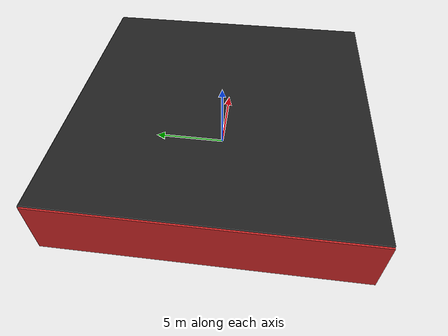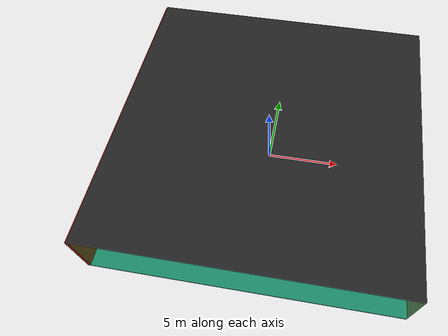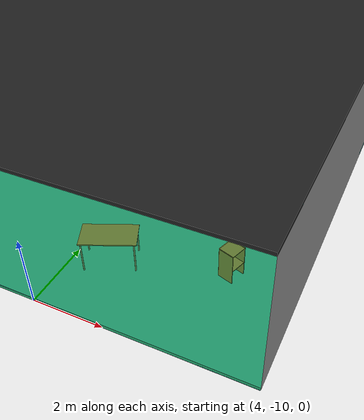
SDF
<sdf version="1.4">
 <world name="default">
  <physics type="ode">
   <max_step_size>0.001</max_step_size>
   <real_time_factor>1</real_time_factor>
   <real_time_update_rate>1000</real_time_update_rate>
   <gravity>0 0 -9.8</gravity>
  </physics>
  <scene><ambient>0.4 0.4 0.4 1</ambient><background>0.7 0.7 0.7 1</background><shadows>1</shadows></scene>
  <model name="Surrounding">
   <static>1</static>
   <link name="Ceiling">
    <collision name="Ceiling_Collision"><geometry><box><size>20 20 0.1</size></box></geometry></collision>
    <visual name="Ceiling_Visual">
     <geometry><box><size>20 20 0.1</size></box></geometry>
     <material>
      <script><uri>file://media/materials/scripts/gazebo.material</uri><name>Gazebo/Black</name></script>
     </material>
    </visual>
    <pose>0 0 4.05 0 0 0</pose>
   </link>
   <link name="Wall_South">
    <collision name="Wall_South_Collision">
     <geometry><box><size>20 0 4</size></box></geometry>
     <pose>0 0 2 0 -0 0</pose>
    </collision>
    <visual name="Wall_South_Visual">
     <pose>0 0 2 0 -0 0</pose>
     <geometry><box><size>20 0 4</size></box></geometry>
     <material>
      <script><uri>file://media/materials/scripts/gazebo.material</uri><name>Gazebo/GreenTransparent</name></script>
     </material>
    </visual>
    <velocity_decay><linear>0</linear><angular>0</angular></velocity_decay>
    <pose>0 -10 0 0 -0 0</pose>
   </link>
   <link name="Wall_East">
    <collision name="Wall_21_Collision">
     <geometry><box><size>20 0 4</size></box></geometry>
     <pose>0 0 2 0 -0 0</pose>
    </collision>
    <visual name="Wall_21_Visual">
     <pose>0 0 2 0 -0 0</pose>
     <geometry><box><size>20 0 4</size></box></geometry>
     <material>
      <script><uri>file://media/materials/scripts/gazebo.material</uri><name>Gazebo/Pioneer2Body</name></script>
     </material>
    </visual>
    <velocity_decay><linear>0</linear><angular>0</angular></velocity_decay>
    <pose>10 0 0 0 -0 1.5708</pose>
   </link>
   <link name="Wall_North">
    <collision name="Wall_22_Collision">
     <geometry><box><size>20 0.2 4</size></box></geometry>
     <pose>0 0 2 0 -0 0</pose>
    </collision>
    <visual name="Wall_22_Visual">
     <pose>0 0 2 0 -0 0</pose>
     <geometry><box><size>20 0.2 4</size></box></geometry>
     <material>
      <script><uri>file://media/materials/scripts/gazebo.material</uri><name>Gazebo/DarkGrey</name></script>
     </material>
    </visual>
    <velocity_decay><linear>0</linear><angular>0</angular></velocity_decay>
    <pose>0 10 0 0 -0 0</pose>
   </link>
   <link name="Wall_West">
    <collision name="Wall_23_Collision">
     <geometry><box><size>20 0.2 4</size></box></geometry>
     <pose>0 0 2 0 -0 0</pose>
    </collision>
    <visual name="Wall_23_Visual">
     <pose>0 0 2 0 -0 0</pose>
     <geometry><box><size>20 0.2 4</size></box></geometry>
     <material>
      <script><uri>file://media/materials/scripts/gazebo.material</uri><name>Gazebo/Red</name></script>
     </material>
    </visual>
    <velocity_decay><linear>0</linear><angular>0</angular></velocity_decay>
    <pose>-10 0 0 0 0 -1.5708</pose>
   </link>
   <link name="Ground_link">
    <collision name="collision">
     <pose>0 0 .05 0 -0 0</pose>
     <geometry><box><size>20 20 0.1</size></box></geometry>
    </collision>
    <visual name="visual">
     <pose>0 0 .05 0 -0 0</pose>
     <geometry><box><size>20 20 0.1</size></box></geometry>
     <material>
      <script><uri>file://media/materials/scripts/gazebo.material</uri><name>Gazebo/TurquoiseGlow</name></script>
     </material>
    </visual>
   </link>
   <static>1</static>
  </model>
  <spherical_coordinates>
   <surface_model>EARTH_WGS84</surface_model>
   <latitude_deg>0</latitude_deg>
   <longitude_deg>0</longitude_deg>
   <elevation>0</elevation>
   <heading_deg>0</heading_deg>
  </spherical_coordinates>
  <light name="lightball_0" type="diffuse">
   <diffuse>0.8 0.8 0.8 1</diffuse>
   <specular>0.2 0.2 0.2 1</specular>
   <attenuation>
    <range>100</range>
    <constant>0.7</constant>
    <linear>0.01</linear>
    <quadratic>0.001</quadratic>
   </attenuation>
   <direction>-0.5 0.1 -0.9</direction>
   <pose>3.52329518555 8.39985319645 3.67452427639 0 0 0</pose>
  </light>
  <light name="lightball_1" type="diffuse">
   <diffuse>0.8 0.8 0.8 1</diffuse>
   <specular>0.2 0.2 0.2 1</specular>
   <attenuation>
    <range>100</range>
    <constant>0.7</constant>
    <linear>0.01</linear>
    <quadratic>0.001</quadratic>
   </attenuation>
   <direction>-0.5 0.1 -0.9</direction>
   <pose>2.77646287337 9.65676588211 3.17261089836 0 0 0</pose>
  </light>
  <light name="lightball_2" type="diffuse">
   <diffuse>0.8 0.8 0.8 1</diffuse>
   <specular>0.2 0.2 0.2 1</specular>
   <attenuation>
    <range>100</range>
    <constant>0.7</constant>
    <linear>0.01</linear>
    <quadratic>0.001</quadratic>
   </attenuation>
   <direction>-0.5 0.1 -0.9</direction>
   <pose>9.41951473018 -6.86461038464 0.555665166894 0 0 0</pose>
  </light>
  <include>
   <uri>model://construction_cone</uri>
   <pose>-7.12045258403 -1.80438282046 0 0 0 1.10521451583</pose>
  </include>
  <include><uri>model://cabinet</uri><pose>-7.23995617348 6.95029599911 0 0 0 0.620807322917</pose></include>
  <include><uri>model://cabinet</uri><pose>0.703711317376 1.03540634113 0 0 0 0.707961284606</pose></include>
  <include><uri>model://table</uri><pose>5.0812761669 -8.02951348316 0 0 0 0.415448097801</pose></include>
  <include><uri>model://cabinet</uri><pose>4.97493743464 7.56961834849 0 0 0 0.510719416073</pose></include>
  <include><uri>model://cabinet</uri><pose>8.16417714079 -7.18693201424 0 0 0 2.82516886572</pose></include>
 </world>
</sdf>

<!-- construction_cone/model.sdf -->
<sdf version="1.5">
  <model name="Construction Cone">
    <link name="link">
      <collision name="collision">
        <geometry>
          <mesh>
            <scale>10 10 10</scale>
            <uri>file://isr-testbed/construction_cone/meshes/construction_cone.dae</uri>
          </mesh>
        </geometry>
      </collision>
      <visual name="visual">
        <geometry>
          <mesh>
            <scale>10 10 10</scale>
            <uri>file://isr-testbed/construction_cone/meshes/construction_cone.dae</uri>
          </mesh>
        </geometry>
      </visual>
    </link>
  </model>
</sdf>

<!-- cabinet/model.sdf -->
<sdf version="1.5">
  <model name="cabinet">
    <static>true</static>
    <link name="cabinet_bottom_plate">
      <inertial>
        <pose>0 0 -1 0 0 0</pose>
        <inertia>
          <ixx>2.050000</ixx>
          <ixy>0</ixy>
          <ixz>0</ixz>
          <iyy>2.050000</iyy>
          <iyz>0</iyz>
          <izz>2.050000</izz>
        </inertia>
        <mass>25.000000</mass>
      </inertial>
      <collision name="cabinet_bottom_plate_geom">
        <pose>0 0 0.010000 0 0 0</pose>
        <geometry>
          <box>
            <size>0.450000 0.450000 0.020000</size>
          </box>
        </geometry>
      </collision>
      <visual name="cabinet_bottom_plate_geom_visual">
        <pose>0 0 0.010000 0 0 0</pose>
        <geometry>
          <box>
            <size>0.450000 0.450000 0.020000</size>
          </box>
        </geometry>
        <material>
          <script>
            <uri>model://media/materials/scripts/gazebo.material</uri>
            <name>Gazebo/Wood</name>
          </script>
        </material>
      </visual>
      <collision name="cabinet_bottom_plate_geom_cabinet_back_plate">
        <pose>0.235000 0 0.510000 0 0 0</pose>
        <geometry>
          <box>
            <size>0.020000 0.450000 1.020000</size>
          </box>
        </geometry>
      </collision>
      <visual name="cabinet_bottom_plate_geom_cabinet_back_plate_visual">
        <pose>0.235000 0 0.510000 0 0 0</pose>
        <geometry>
          <box>
            <size>0.020000 0.450000 1.020000</size>
          </box>
        </geometry>
        <material>
          <script>
            <uri>model://media/materials/scripts/gazebo.material</uri>
            <name>Gazebo/Wood</name>
          </script>
        </material>
      </visual>
      <collision name="cabinet_bottom_plate_geom_cabinet_left_plate">
        <pose>0 0.235000 0.510000 0 0 0</pose>
        <geometry>
          <box>
            <size>0.450000 0.020000 1.020000</size>
          </box>
        </geometry>
      </collision>
      <visual name="cabinet_bottom_plate_geom_cabinet_left_plate_visual">
        <pose>0 0.235000 0.510000 0 0 0</pose>
        <geometry>
          <box>
            <size>0.450000 0.020000 1.020000</size>
          </box>
        </geometry>
        <material>
          <script>
            <uri>model://media/materials/scripts/gazebo.material</uri>
            <name>Gazebo/Wood</name>
          </script>
        </material>
      </visual>
      <collision name="cabinet_bottom_plate_geom_cabinet_middle_plate">
        <pose>0 0 0.510000 0 0 0</pose>
        <geometry>
          <box>
            <size>0.450000 0.450000 0.020000</size>
          </box>
        </geometry>
      </collision>
      <visual name="cabinet_bottom_plate_geom_cabinet_middle_plate_visual">
        <pose>0 0 0.510000 0 0 0</pose>
        <geometry>
          <box>
            <size>0.450000 0.450000 0.020000</size>
          </box>
        </geometry>
        <material>
          <script>
            <uri>model://media/materials/scripts/gazebo.material</uri>
            <name>Gazebo/Wood</name>
          </script>
        </material>
      </visual>
      <collision name="cabinet_bottom_plate_geom_cabinet_right_plate">
        <pose>0 -0.235000 0.510000 0 0 0</pose>
        <geometry>
          <box>
            <size>0.450000 0.020000 1.020000</size>
          </box>
        </geometry>
      </collision>
      <visual name="cabinet_bottom_plate_geom_cabinet_right_plate_visual">
        <pose>0 -0.235000 0.510000 0 0 0</pose>
        <geometry>
          <box>
            <size>0.450000 0.020000 1.020000</size>
          </box>
        </geometry>
        <material>
          <script>
            <uri>model://media/materials/scripts/gazebo.material</uri>
            <name>Gazebo/Wood</name>
          </script>
        </material>
      </visual>
      <collision name="cabinet_bottom_plate_geom_cabinet_top_plate">
        <pose>0 0 1.010000 0 0 0</pose>
        <geometry>
          <box>
            <size>0.450000 0.450000 0.020000</size>
          </box>
        </geometry>
      </collision>
      <visual name="cabinet_bottom_plate_geom_cabinet_top_plate_visual">
        <pose>0 0 1.010000 0 0 0</pose>
        <geometry>
          <box>
            <size>0.450000 0.450000 0.020000</size>
          </box>
        </geometry>
        <material>
          <script>
            <uri>model://media/materials/scripts/gazebo.material</uri>
            <name>Gazebo/Wood</name>
          </script>
        </material>
      </visual>
    </link>
  </model>
</sdf>

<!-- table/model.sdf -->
<sdf version="1.5">
  <model name="table">
    <static>true</static>
    <link name="link">
      <collision name="surface">
        <pose>0 0 1.0 0 0 0</pose>
        <geometry>
          <box>
            <size>1.5 0.8 0.03</size>
          </box>
        </geometry>
        <surface>
          <friction>
            <ode>
              <mu>0.6</mu>
              <mu2>0.6</mu2>
            </ode>
          </friction>
        </surface>
      </collision>
      <visual name="visual1">
        <pose>0 0 1.0 0 0 0</pose>
        <geometry>
          <box>
            <size>1.5 0.8 0.03</size>
          </box>
        </geometry>
        <material>
          <script>
            <uri>model://media/materials/scripts/gazebo.material</uri>
            <name>Gazebo/Wood</name>
          </script>
        </material>
      </visual>
      <collision name="front_left_leg">
        <pose>0.68 0.38 0.5 0 0 0</pose>
        <geometry>
          <cylinder>
            <radius>0.02</radius>
            <length>1.0</length>
          </cylinder>
        </geometry>
      </collision>
      <visual name="front_left_leg">
        <pose>0.68 0.38 0.5 0 0 0</pose>
        <geometry>
          <cylinder>
            <radius>0.02</radius>
            <length>1.0</length>
          </cylinder>
        </geometry>
        <material>
          <script>
            <uri>model://media/materials/scripts/gazebo.material</uri>
            <name>Gazebo/Grey</name>
          </script>
        </material>
      </visual>
      <collision name="front_right_leg">
        <pose>0.68 -0.38 0.5 0 0 0</pose>
        <geometry>
          <cylinder>
            <radius>0.02</radius>
            <length>1.0</length>
          </cylinder>
        </geometry>
      </collision>
      <visual name="front_right_leg">
        <pose>0.68 -0.38 0.5 0 0 0</pose>
        <geometry>
          <cylinder>
            <radius>0.02</radius>
            <length>1.0</length>
          </cylinder>
        </geometry>
        <material>
          <script>
            <uri>model://media/materials/scripts/gazebo.material</uri>
            <name>Gazebo/Grey</name>
          </script>
        </material>
      </visual>
      <collision name="back_right_leg">
        <pose>-0.68 -0.38 0.5 0 0 0</pose>
        <geometry>
          <cylinder>
            <radius>0.02</radius>
            <length>1.0</length>
          </cylinder>
        </geometry>
      </collision>
      <visual name="back_right_leg">
        <pose>-0.68 -0.38 0.5 0 0 0</pose>
        <geometry>
          <cylinder>
            <radius>0.02</radius>
            <length>1.0</length>
          </cylinder>
        </geometry>
        <material>
          <script>
            <uri>model://media/materials/scripts/gazebo.material</uri>
            <name>Gazebo/Grey</name>
          </script>
        </material>
      </visual>
      <collision name="back_left_leg">
        <pose>-0.68 0.38 0.5 0 0 0</pose>
        <geometry>
          <cylinder>
            <radius>0.02</radius>
            <length>1.0</length>
          </cylinder>
        </geometry>
      </collision>
      <visual name="back_left_leg">
        <pose>-0.68 0.38 0.5 0 0 0</pose>
        <geometry>
          <cylinder>
            <radius>0.02</radius>
            <length>1.0</length>
          </cylinder>
        </geometry>
        <material>
          <script>
            <uri>model://media/materials/scripts/gazebo.material</uri>
            <name>Gazebo/Grey</name>
          </script>
        </material>
      </visual>
    </link>
  </model>
</sdf>
